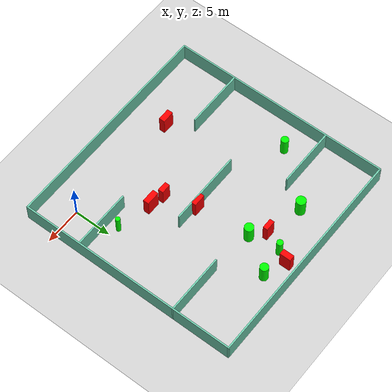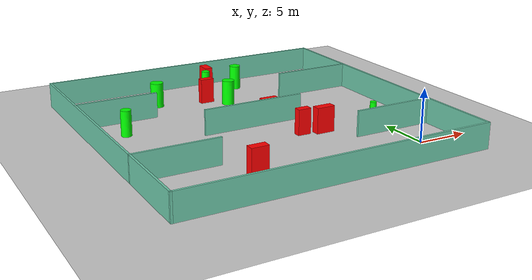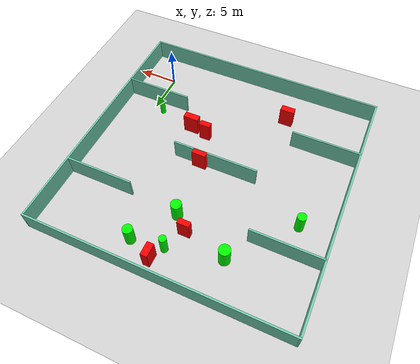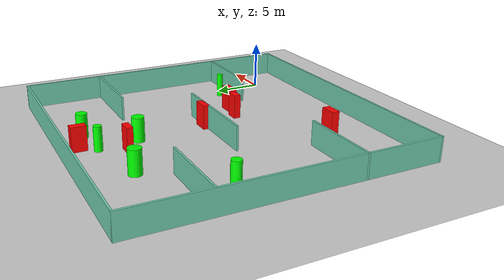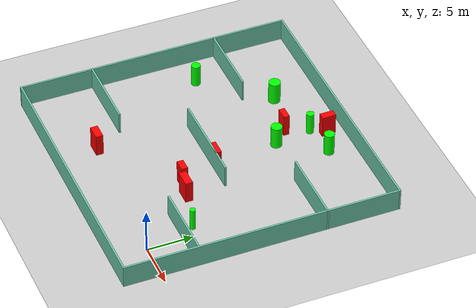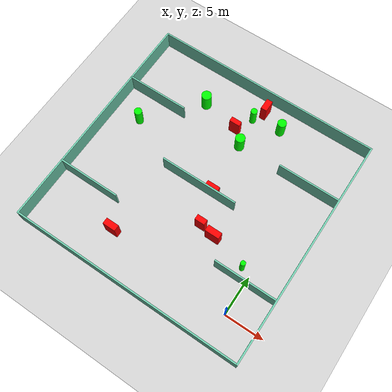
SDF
<sdf version="1.7">
 <world name="default">
  <light name="sun" type="directional">
   <pose>0 0 10 0 -0 0</pose>
   <diffuse>0.8 0.8 0.8 1</diffuse>
   <specular>0.2 0.2 0.2 1</specular>
   <attenuation>
    <range>1000</range>
    <constant>0.9</constant>
    <linear>0.01</linear>
    <quadratic>0.001</quadratic>
   </attenuation>
   <direction>-0.5 0.1 -0.9</direction>
   <spot><inner_angle>0</inner_angle><outer_angle>0</outer_angle><falloff>0</falloff></spot>
  </light>
  <model name="ground_plane">
   <static>1</static>
   <link name="link">
    <collision name="collision">
     <geometry><plane><normal>0 0 1</normal><size>100 100</size></plane></geometry>
     <surface>
      <contact><collide_bitmask>65535</collide_bitmask></contact>
      <friction><ode><mu>100</mu><mu2>50</mu2></ode></friction>
     </surface>
    </collision>
    <visual name="visual">
     <cast_shadows>0</cast_shadows>
     <geometry><plane><normal>0 0 1</normal><size>100 100</size></plane></geometry>
     <material>
      <script><uri>file://media/materials/scripts/gazebo.material</uri><name>Gazebo/Grey</name></script>
     </material>
    </visual>
   </link>
  </model>
  <gravity>0 0 -9.8</gravity>
  <magnetic_field>6e-06 2.3e-05 -4.2e-05</magnetic_field>
  <atmosphere type="adiabatic"/>
  <physics type="ode">
   <max_step_size>0.001</max_step_size>
   <real_time_factor>1</real_time_factor>
   <real_time_update_rate>1000</real_time_update_rate>
  </physics>
  <scene><ambient>0.4 0.4 0.4 1</ambient><background>0.7 0.7 0.7 1</background><shadows>1</shadows></scene>
  <spherical_coordinates>
   <surface_model>EARTH_WGS84</surface_model>
   <latitude_deg>0</latitude_deg>
   <longitude_deg>0</longitude_deg>
   <elevation>0</elevation>
   <heading_deg>0</heading_deg>
  </spherical_coordinates>
  <model name="my_base_walls">
   <link name="Wall_10">
    <collision name="Wall_10_Collision">
     <geometry><box><size>8.2 0.2 2.5</size></box></geometry>
     <pose>0 0 1.25 0 -0 0</pose>
    </collision>
    <visual name="Wall_10_Visual">
     <pose>0 0 1.25 0 -0 0</pose>
     <geometry><box><size>8.2 0.2 2.5</size></box></geometry>
     <material>
      <script><uri>file://media/materials/scripts/gazebo.material</uri><name>Gazebo/Grey</name></script>
      <ambient>0.435294 0.796078 0.67451 1</ambient>
     </material>
     <meta><layer>0</layer></meta>
    </visual>
    <pose>-11 -7 0 0 -0 0</pose>
   </link>
   <link name="Wall_12">
    <collision name="Wall_12_Collision">
     <geometry><box><size>8.2 0.2 2.5</size></box></geometry>
     <pose>0 0 1.25 0 -0 0</pose>
    </collision>
    <visual name="Wall_12_Visual">
     <pose>0 0 1.25 0 -0 0</pose>
     <geometry><box><size>8.2 0.2 2.5</size></box></geometry>
     <material>
      <script><uri>file://media/materials/scripts/gazebo.material</uri><name>Gazebo/Grey</name></script>
      <ambient>0.435294 0.796078 0.67451 1</ambient>
     </material>
     <meta><layer>0</layer></meta>
    </visual>
    <pose>-11 7 0 0 -0 0</pose>
   </link>
   <link name="Wall_14">
    <collision name="Wall_14_Collision">
     <geometry><box><size>8.2 0.2 2.5</size></box></geometry>
     <pose>0 0 1.25 0 -0 0</pose>
    </collision>
    <visual name="Wall_14_Visual">
     <pose>0 0 1.25 0 -0 0</pose>
     <geometry><box><size>8.2 0.2 2.5</size></box></geometry>
     <material>
      <script><uri>file://media/materials/scripts/gazebo.material</uri><name>Gazebo/Grey</name></script>
      <ambient>0.435294 0.796078 0.67451 1</ambient>
     </material>
     <meta><layer>0</layer></meta>
    </visual>
    <pose>11 7 0 0 -0 3.14159</pose>
   </link>
   <link name="Wall_16">
    <collision name="Wall_16_Collision">
     <geometry><box><size>10.2 0.2 2.5</size></box></geometry>
     <pose>0 0 1.25 0 -0 0</pose>
    </collision>
    <visual name="Wall_16_Visual">
     <pose>0 0 1.25 0 -0 0</pose>
     <geometry><box><size>10.2 0.2 2.5</size></box></geometry>
     <material>
      <script><uri>file://media/materials/scripts/gazebo.material</uri><name>Gazebo/Grey</name></script>
      <ambient>0.435294 0.796078 0.67451 1</ambient>
     </material>
     <meta><layer>0</layer></meta>
    </visual>
    <pose>0 0 0 0 -0 3.14159</pose>
   </link>
   <link name="Wall_2">
    <collision name="Wall_2_Collision">
     <geometry><box><size>30.2 0.2 2.5</size></box></geometry>
     <pose>0 0 1.25 0 -0 0</pose>
    </collision>
    <visual name="Wall_2_Visual">
     <pose>0 0 1.25 0 -0 0</pose>
     <geometry><box><size>30.2 0.2 2.5</size></box></geometry>
     <material>
      <script><uri>file://media/materials/scripts/gazebo.material</uri><name>Gazebo/Grey</name></script>
      <ambient>0.435294 0.796078 0.67451 1</ambient>
     </material>
     <meta><layer>0</layer></meta>
    </visual>
    <pose>0 -15 0 0 -0 3.14159</pose>
   </link>
   <link name="Wall_3">
    <collision name="Wall_3_Collision">
     <geometry><box><size>30.2 0.2 2.5</size></box></geometry>
     <pose>0 0 1.25 0 -0 0</pose>
    </collision>
    <visual name="Wall_3_Visual">
     <pose>0 0 1.25 0 -0 0</pose>
     <geometry><box><size>30.2 0.2 2.5</size></box></geometry>
     <material>
      <script><uri>file://media/materials/scripts/gazebo.material</uri><name>Gazebo/Grey</name></script>
      <ambient>0.435294 0.796078 0.67451 1</ambient>
     </material>
     <meta><layer>0</layer></meta>
    </visual>
    <pose>-15 0 0 0 -0 1.5708</pose>
   </link>
   <link name="Wall_4">
    <collision name="Wall_4_Collision">
     <geometry><box><size>30.2 0.2 2.5</size></box></geometry>
     <pose>0 0 1.25 0 -0 0</pose>
    </collision>
    <visual name="Wall_4_Visual">
     <pose>0 0 1.25 0 -0 0</pose>
     <geometry><box><size>30.2 0.2 2.5</size></box></geometry>
     <material>
      <script><uri>file://media/materials/scripts/gazebo.material</uri><name>Gazebo/Grey</name></script>
      <ambient>0.435294 0.796078 0.67451 1</ambient>
     </material>
     <meta><layer>0</layer></meta>
    </visual>
    <pose>0 15 0 0 -0 0</pose>
   </link>
   <link name="Wall_6">
    <collision name="Wall_6_Collision">
     <geometry><box><size>30.2 0.2 2.5</size></box></geometry>
     <pose>0 0 1.25 0 -0 0</pose>
    </collision>
    <visual name="Wall_6_Visual">
     <pose>0 0 1.25 0 -0 0</pose>
     <geometry><box><size>30.2 0.2 2.5</size></box></geometry>
     <material>
      <script><uri>file://media/materials/scripts/gazebo.material</uri><name>Gazebo/Grey</name></script>
      <ambient>0.435294 0.796078 0.67451 1</ambient>
     </material>
     <meta><layer>0</layer></meta>
    </visual>
    <pose>15 0 0 0 -0 1.5708</pose>
   </link>
   <link name="Wall_8">
    <collision name="Wall_8_Collision">
     <geometry><box><size>8.2 0.2 2.5</size></box></geometry>
     <pose>0 0 1.25 0 -0 0</pose>
    </collision>
    <visual name="Wall_8_Visual">
     <pose>0 0 1.25 0 -0 0</pose>
     <geometry><box><size>8.2 0.2 2.5</size></box></geometry>
     <material>
      <script><uri>file://media/materials/scripts/gazebo.material</uri><name>Gazebo/Grey</name></script>
      <ambient>0.435294 0.796078 0.67451 1</ambient>
     </material>
     <meta><layer>0</layer></meta>
    </visual>
    <pose>11 -7 0 0 -0 3.14159</pose>
   </link>
   <static>1</static>
   <pose>-11 11 0 0 -0 0</pose>
  </model>
  <model name="cylinder1">
   <static>1</static>
   <link name="link">
    <inertial>
     <mass>1</mass>
     <inertia><ixx>0.5</ixx><ixy>0</ixy><ixz>0</ixz><iyy>0.5</iyy><iyz>0</iyz><izz>1</izz></inertia>
    </inertial>
    <collision name="collision">
     <geometry><cylinder><radius>0.41598744972742696</radius><length>2.5</length></cylinder></geometry>
    </collision>
    <visual name="visual">
     <geometry><cylinder><radius>0.41598744972742696</radius><length>2.5</length></cylinder></geometry>
     <material>
      <ambient>0 1 0 1</ambient>
      <diffuse>0 1 0 1</diffuse>
      <specular>0.1 0.1 0.1 1</specular>
      <emissive>0 0 0 0</emissive>
     </material>
    </visual>
   </link>
   <pose>-10.460088856120027 22.49769909910132 1.25 0 0 0</pose>
  </model>
  <model name="cylinder2">
   <static>1</static>
   <link name="link">
    <inertial>
     <mass>1</mass>
     <inertia><ixx>0.5</ixx><ixy>0</ixy><ixz>0</ixz><iyy>0.5</iyy><iyz>0</iyz><izz>1</izz></inertia>
    </inertial>
    <collision name="collision">
     <geometry><cylinder><radius>0.6497338610467773</radius><length>2.5</length></cylinder></geometry>
    </collision>
    <visual name="visual">
     <geometry><cylinder><radius>0.6497338610467773</radius><length>2.5</length></cylinder></geometry>
     <material>
      <ambient>0 1 0 1</ambient>
      <diffuse>0 1 0 1</diffuse>
      <specular>0.1 0.1 0.1 1</specular>
      <emissive>0 0 0 0</emissive>
     </material>
    </visual>
   </link>
   <pose>-16.605274115628294 21.082151237140206 1.25 0 0 0</pose>
  </model>
  <model name="cylinder3">
   <static>1</static>
   <link name="link">
    <inertial>
     <mass>1</mass>
     <inertia><ixx>0.5</ixx><ixy>0</ixy><ixz>0</ixz><iyy>0.5</iyy><iyz>0</iyz><izz>1</izz></inertia>
    </inertial>
    <collision name="collision">
     <geometry><cylinder><radius>0.5649757099875001</radius><length>2.5</length></cylinder></geometry>
    </collision>
    <visual name="visual">
     <geometry><cylinder><radius>0.5649757099875001</radius><length>2.5</length></cylinder></geometry>
     <material>
      <ambient>0 1 0 1</ambient>
      <diffuse>0 1 0 1</diffuse>
      <specular>0.1 0.1 0.1 1</specular>
      <emissive>0 0 0 0</emissive>
     </material>
    </visual>
   </link>
   <pose>-6.722836020201635 23.002459621585857 1.25 0 0 0</pose>
  </model>
  <model name="cylinder4">
   <static>1</static>
   <link name="link">
    <inertial>
     <mass>1</mass>
     <inertia><ixx>0.5</ixx><ixy>0</ixy><ixz>0</ixz><iyy>0.5</iyy><iyz>0</iyz><izz>1</izz></inertia>
    </inertial>
    <collision name="collision">
     <geometry><cylinder><radius>0.6190004550756542</radius><length>2.5</length></cylinder></geometry>
    </collision>
    <visual name="visual">
     <geometry><cylinder><radius>0.6190004550756542</radius><length>2.5</length></cylinder></geometry>
     <material>
      <ambient>0 1 0 1</ambient>
      <diffuse>0 1 0 1</diffuse>
      <specular>0.1 0.1 0.1 1</specular>
      <emissive>0 0 0 0</emissive>
     </material>
    </visual>
   </link>
   <pose>-9.893550534562262 18.409269946510403 1.25 0 0 0</pose>
  </model>
  <model name="cylinder5">
   <static>1</static>
   <link name="link">
    <inertial>
     <mass>1</mass>
     <inertia><ixx>0.5</ixx><ixy>0</ixy><ixz>0</ixz><iyy>0.5</iyy><iyz>0</iyz><izz>1</izz></inertia>
    </inertial>
    <collision name="collision">
     <geometry><cylinder><radius>0.5040541574039992</radius><length>2.5</length></cylinder></geometry>
    </collision>
    <visual name="visual">
     <geometry><cylinder><radius>0.5040541574039992</radius><length>2.5</length></cylinder></geometry>
     <material>
      <ambient>0 1 0 1</ambient>
      <diffuse>0 1 0 1</diffuse>
      <specular>0.1 0.1 0.1 1</specular>
      <emissive>0 0 0 0</emissive>
     </material>
    </visual>
   </link>
   <pose>-22.395736680243136 14.43435716824088 1.25 0 0 0</pose>
  </model>
  <model name="cylinder6">
   <static>1</static>
   <link name="link">
    <inertial>
     <mass>1</mass>
     <inertia><ixx>0.5</ixx><ixy>0</ixy><ixz>0</ixz><iyy>0.5</iyy><iyz>0</iyz><izz>1</izz></inertia>
    </inertial>
    <collision name="collision">
     <geometry><cylinder><radius>0.31222113231412385</radius><length>2.5</length></cylinder></geometry>
    </collision>
    <visual name="visual">
     <geometry><cylinder><radius>0.31222113231412385</radius><length>2.5</length></cylinder></geometry>
     <material>
      <ambient>0 1 0 1</ambient>
      <diffuse>0 1 0 1</diffuse>
      <specular>0.1 0.1 0.1 1</specular>
      <emissive>0 0 0 0</emissive>
     </material>
    </visual>
   </link>
   <pose>-1.2868704162252769 5.4824469329508005 1.25 0 0 0</pose>
  </model>
  <model name="box1">
   <static>1</static>
   <link name="link">
    <inertial>
     <mass>1</mass>
     <inertia><ixx>0.083</ixx><ixy>0</ixy><ixz>0</ixz><iyy>0.083</iyy><iyz>0</iyz><izz>0.083</izz></inertia>
    </inertial>
    <collision name="collision">
     <geometry><box><size>1.6777076226680403 0.801845798606083 2.5</size></box></geometry>
    </collision>
    <visual name="visual">
     <geometry><box><size>1.6777076226680403 0.801845798606083 2.5</size></box></geometry>
     <material>
      <ambient>1 0 0 1</ambient>
      <diffuse>1 0 0 1</diffuse>
      <specular>0.1 0.1 0.1 1</specular>
      <emissive>0 0 0 0</emissive>
     </material>
    </visual>
    <sensor name="my_contact" type="contact">
     <contact><collision>box_collision</collision><topic>__default_topic__</topic></contact>
    </sensor>
   </link>
   <pose>-16.24420044164139 0.8204120918619529 1.25 0 0 0</pose>
  </model>
  <model name="box2">
   <static>1</static>
   <link name="link">
    <inertial>
     <mass>1</mass>
     <inertia><ixx>0.083</ixx><ixy>0</ixy><ixz>0</ixz><iyy>0.083</iyy><iyz>0</iyz><izz>0.083</izz></inertia>
    </inertial>
    <collision name="collision">
     <geometry><box><size>1.840617477596953 0.7973564389251373 2.5</size></box></geometry>
    </collision>
    <visual name="visual">
     <geometry><box><size>1.840617477596953 0.7973564389251373 2.5</size></box></geometry>
     <material>
      <ambient>1 0 0 1</ambient>
      <diffuse>1 0 0 1</diffuse>
      <specular>0.1 0.1 0.1 1</specular>
      <emissive>0 0 0 0</emissive>
     </material>
    </visual>
    <sensor name="my_contact" type="contact">
     <contact><collision>box_collision</collision><topic>__default_topic__</topic></contact>
    </sensor>
   </link>
   <pose>-6.024552391456183 6.663341771265227 1.25 0 0 0</pose>
  </model>
  <model name="box3">
   <static>1</static>
   <link name="link">
    <inertial>
     <mass>1</mass>
     <inertia><ixx>0.083</ixx><ixy>0</ixy><ixz>0</ixz><iyy>0.083</iyy><iyz>0</iyz><izz>0.083</izz></inertia>
    </inertial>
    <collision name="collision">
     <geometry><box><size>1.3074004038648463 0.6975481846755175 2.5</size></box></geometry>
    </collision>
    <visual name="visual">
     <geometry><box><size>1.3074004038648463 0.6975481846755175 2.5</size></box></geometry>
     <material>
      <ambient>1 0 0 1</ambient>
      <diffuse>1 0 0 1</diffuse>
      <specular>0.1 0.1 0.1 1</specular>
      <emissive>0 0 0 0</emissive>
     </material>
    </visual>
    <sensor name="my_contact" type="contact">
     <contact><collision>box_collision</collision><topic>__default_topic__</topic></contact>
    </sensor>
   </link>
   <pose>-8.019398307348869 7.084243902766868 1.25 0 0 0</pose>
  </model>
  <model name="box4">
   <static>1</static>
   <link name="link">
    <inertial>
     <mass>1</mass>
     <inertia><ixx>0.083</ixx><ixy>0</ixy><ixz>0</ixz><iyy>0.083</iyy><iyz>0</iyz><izz>0.083</izz></inertia>
    </inertial>
    <collision name="collision">
     <geometry><box><size>0.7963004756947405 1.5139844378414458 2.5</size></box></geometry>
    </collision>
    <visual name="visual">
     <geometry><box><size>0.7963004756947405 1.5139844378414458 2.5</size></box></geometry>
     <material>
      <ambient>1 0 0 1</ambient>
      <diffuse>1 0 0 1</diffuse>
      <specular>0.1 0.1 0.1 1</specular>
      <emissive>0 0 0 0</emissive>
     </material>
    </visual>
    <sensor name="my_contact" type="contact">
     <contact><collision>box_collision</collision><topic>__default_topic__</topic></contact>
    </sensor>
   </link>
   <pose>-9.628889928016587 24.12656444838389 1.25 0 0 0</pose>
  </model>
  <model name="box5">
   <static>1</static>
   <link name="link">
    <inertial>
     <mass>1</mass>
     <inertia><ixx>0.083</ixx><ixy>0</ixy><ixz>0</ixz><iyy>0.083</iyy><iyz>0</iyz><izz>0.083</izz></inertia>
    </inertial>
    <collision name="collision">
     <geometry><box><size>1.6855161108976149 0.6350334433823108 2.5</size></box></geometry>
    </collision>
    <visual name="visual">
     <geometry><box><size>1.6855161108976149 0.6350334433823108 2.5</size></box></geometry>
     <material>
      <ambient>1 0 0 1</ambient>
      <diffuse>1 0 0 1</diffuse>
      <specular>0.1 0.1 0.1 1</specular>
      <emissive>0 0 0 0</emissive>
     </material>
    </visual>
    <sensor name="my_contact" type="contact">
     <contact><collision>box_collision</collision><topic>__default_topic__</topic></contact>
    </sensor>
   </link>
   <pose>-9.218097156224221 11.283394255734587 1.25 0 0 0</pose>
  </model>
  <model name="box6">
   <static>1</static>
   <link name="link">
    <inertial>
     <mass>1</mass>
     <inertia><ixx>0.083</ixx><ixy>0</ixy><ixz>0</ixz><iyy>0.083</iyy><iyz>0</iyz><izz>0.083</izz></inertia>
    </inertial>
    <collision name="collision">
     <geometry><box><size>1.3881331395682919 0.6446519234761526 2.5</size></box></geometry>
    </collision>
    <visual name="visual">
     <geometry><box><size>1.3881331395682919 0.6446519234761526 2.5</size></box></geometry>
     <material>
      <ambient>1 0 0 1</ambient>
      <diffuse>1 0 0 1</diffuse>
      <specular>0.1 0.1 0.1 1</specular>
      <emissive>0 0 0 0</emissive>
     </material>
    </visual>
    <sensor name="my_contact" type="contact">
     <contact><collision>box_collision</collision><topic>__default_topic__</topic></contact>
    </sensor>
   </link>
   <pose>-11.598288243414423 20.01077212110991 1.25 0 0 0</pose>
  </model>
 </world>
</sdf>
